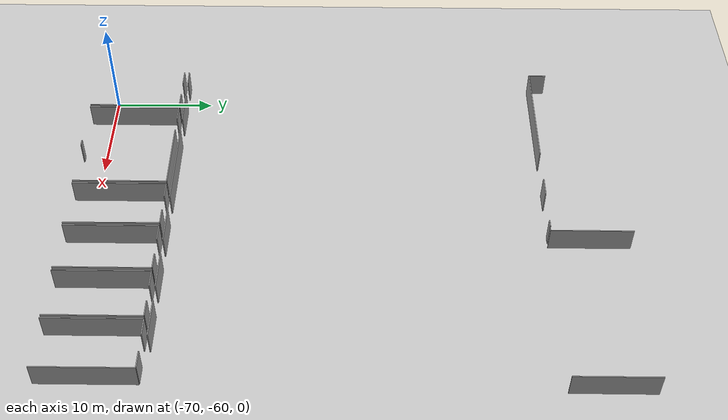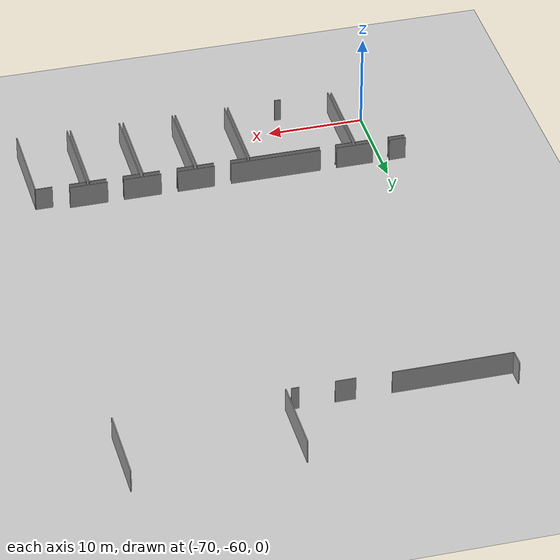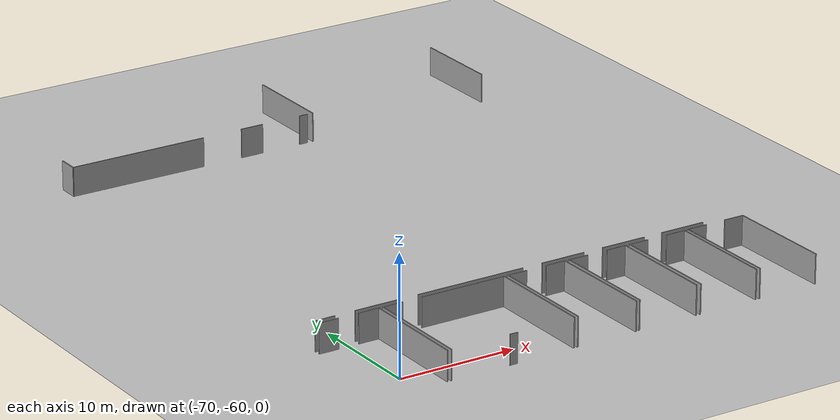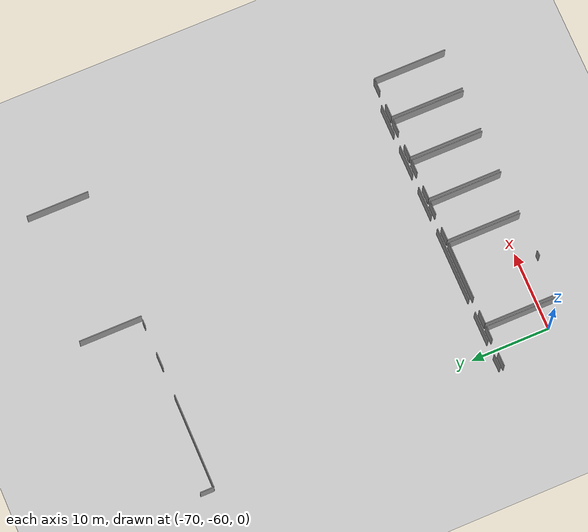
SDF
<sdf version="1.6">
 <world name="default">
  <model name="ground_plane">
   <static>1</static>
   <link name="link">
    <collision name="collision">
     <geometry><plane><normal>0 0 1</normal><size>100 100</size></plane></geometry>
     <surface><friction><ode><mu>100</mu><mu2>50</mu2></ode></friction></surface>
    </collision>
    <visual name="visual">
     <cast_shadows>0</cast_shadows>
     <geometry><plane><normal>0 0 1</normal><size>100 100</size></plane></geometry>
     <material>
      <script><uri>file://media/materials/scripts/gazebo.material</uri><name>Gazebo/Grey</name></script>
     </material>
    </visual>
   </link>
  </model>
  <model name="0510045905_A_40_1_103">
   <static>1</static>
   <link name="Wall_0">
    <collision name="Wall_0_Collision">
     <geometry><box><size>0.769020894272 0.1 2.5</size></box></geometry>
     <pose>0.384510447136 0 1.25 0 0 0</pose>
    </collision>
    <visual name="Wall_0_Visual">
     <pose>0.384510447136 0 1.25 0 0 0</pose>
     <geometry><box><size>0.769020894272 0.1 2.5</size></box></geometry>
     <material>
      <script><uri>file://media/materials/scripts/gazebo.material</uri><name>Gazebo/Grey</name></script>
      <ambient>1 1 1 1</ambient>
     </material>
    </visual>
    <pose>33.1874393254 -78.0304943434 0 0 0 3.14159265359</pose>
   </link>
   <link name="Wall_1">
    <collision name="Wall_1_Collision">
     <geometry><box><size>2.03168721408 0.1 2.5</size></box></geometry>
     <pose>1.01584360704 0 1.25 0 0 0</pose>
    </collision>
    <visual name="Wall_1_Visual">
     <pose>1.01584360704 0 1.25 0 0 0</pose>
     <geometry><box><size>2.03168721408 0.1 2.5</size></box></geometry>
     <material>
      <script><uri>file://media/materials/scripts/gazebo.material</uri><name>Gazebo/Grey</name></script>
      <ambient>1 1 1 1</ambient>
     </material>
    </visual>
    <pose>28.8966580585 -78.0304943434 0 0 0 3.14159265359</pose>
   </link>
   <link name="Wall_2">
    <collision name="Wall_2_Collision">
     <geometry><box><size>12.0568770899 0.1 2.5</size></box></geometry>
     <pose>6.02843854495 0 1.25 0 0 0</pose>
    </collision>
    <visual name="Wall_2_Visual">
     <pose>6.02843854495 0 1.25 0 0 0</pose>
     <geometry><box><size>12.0568770899 0.1 2.5</size></box></geometry>
     <material>
      <script><uri>file://media/materials/scripts/gazebo.material</uri><name>Gazebo/Grey</name></script>
      <ambient>1 1 1 1</ambient>
     </material>
    </visual>
    <pose>23.3066629442 -78.0304943434 0 0 0 3.14159265359</pose>
   </link>
   <link name="Wall_3">
    <collision name="Wall_3_Collision">
     <geometry><box><size>1.73905319061 0.1 2.5</size></box></geometry>
     <pose>0.869526595306 0 1.25 0 0 0</pose>
    </collision>
    <visual name="Wall_3_Visual">
     <pose>0.869526595306 0 1.25 0 0 0</pose>
     <geometry><box><size>1.73905319061 0.1 2.5</size></box></geometry>
     <material>
      <script><uri>file://media/materials/scripts/gazebo.material</uri><name>Gazebo/Grey</name></script>
      <ambient>1 1 1 1</ambient>
     </material>
    </visual>
    <pose>11.2497858543 -78.0304943434 0 0 0 1.57079632679</pose>
   </link>
   <link name="Wall_110">
    <collision name="Wall_110_Collision">
     <geometry><box><size>7.89781920395 0.1 2.5</size></box></geometry>
     <pose>3.94890960197 0 1.25 0 0 0</pose>
    </collision>
    <visual name="Wall_110_Visual">
     <pose>3.94890960197 0 1.25 0 0 0</pose>
     <geometry><box><size>7.89781920395 0.1 2.5</size></box></geometry>
     <material>
      <script><uri>file://media/materials/scripts/gazebo.material</uri><name>Gazebo/Grey</name></script>
      <ambient>1 1 1 1</ambient>
     </material>
    </visual>
    <pose>50.412492148 -78.0157738114 0 0 0 1.57079632679</pose>
   </link>
   <link name="Wall_116">
    <collision name="Wall_116_Collision">
     <geometry><box><size>7.96710722512 0.1 2.5</size></box></geometry>
     <pose>3.98355361256 0 1.25 0 0 0</pose>
    </collision>
    <visual name="Wall_116_Visual">
     <pose>3.98355361256 0 1.25 0 0 0</pose>
     <geometry><box><size>7.96710722512 0.1 2.5</size></box></geometry>
     <material>
      <script><uri>file://media/materials/scripts/gazebo.material</uri><name>Gazebo/Grey</name></script>
      <ambient>1 1 1 1</ambient>
     </material>
    </visual>
    <pose>33.6947900738 -78.078970578 0 0 0 1.57079632679</pose>
   </link>
   <link name="Wall_415">
    <collision name="Wall_415_Collision">
     <geometry><box><size>3.92175275851 0.1 2.5</size></box></geometry>
     <pose>1.96087637926 0 1.25 0 0 0</pose>
    </collision>
    <visual name="Wall_415_Visual">
     <pose>1.96087637926 0 1.25 0 0 0</pose>
     <geometry><box><size>3.92175275851 0.1 2.5</size></box></geometry>
     <material>
      <script><uri>file://media/materials/scripts/gazebo.material</uri><name>Gazebo/Grey</name></script>
      <ambient>1 1 1 1</ambient>
     </material>
    </visual>
    <pose>46.5894684746 -114.787408869 0 0 0 3.14159265359</pose>
   </link>
   <link name="Wall_416">
    <collision name="Wall_416_Collision">
     <geometry><box><size>3.91490009708 0.1 2.5</size></box></geometry>
     <pose>1.95745004854 0 1.25 0 0 0</pose>
    </collision>
    <visual name="Wall_416_Visual">
     <pose>1.95745004854 0 1.25 0 0 0</pose>
     <geometry><box><size>3.91490009708 0.1 2.5</size></box></geometry>
     <material>
      <script><uri>file://media/materials/scripts/gazebo.material</uri><name>Gazebo/Grey</name></script>
      <ambient>1 1 1 1</ambient>
     </material>
    </visual>
    <pose>41.0114020672 -114.787408869 0 0 0 3.14159265359</pose>
   </link>
   <link name="Wall_417">
    <collision name="Wall_417_Collision">
     <geometry><box><size>3.87175371027 0.1 2.5</size></box></geometry>
     <pose>1.93587685514 0 1.25 0 0 0</pose>
    </collision>
    <visual name="Wall_417_Visual">
     <pose>1.93587685514 0 1.25 0 0 0</pose>
     <geometry><box><size>3.87175371027 0.1 2.5</size></box></geometry>
     <material>
      <script><uri>file://media/materials/scripts/gazebo.material</uri><name>Gazebo/Grey</name></script>
      <ambient>1 1 1 1</ambient>
     </material>
    </visual>
    <pose>35.3752149388 -114.787408869 0 0 0 3.14159265359</pose>
   </link>
   <link name="Wall_418">
    <collision name="Wall_418_Collision">
     <geometry><box><size>9.44677449033 0.1 2.5</size></box></geometry>
     <pose>4.72338724517 0 1.25 0 0 0</pose>
    </collision>
    <visual name="Wall_418_Visual">
     <pose>4.72338724517 0 1.25 0 0 0</pose>
     <geometry><box><size>9.44677449033 0.1 2.5</size></box></geometry>
     <material>
      <script><uri>file://media/materials/scripts/gazebo.material</uri><name>Gazebo/Grey</name></script>
      <ambient>1 1 1 1</ambient>
     </material>
    </visual>
    <pose>29.7628852243 -114.787408869 0 0 0 3.14159265359</pose>
   </link>
   <link name="Wall_419">
    <collision name="Wall_419_Collision">
     <geometry><box><size>3.86490104884 0.1 2.5</size></box></geometry>
     <pose>1.93245052442 0 1.25 0 0 0</pose>
    </collision>
    <visual name="Wall_419_Visual">
     <pose>1.93245052442 0 1.25 0 0 0</pose>
     <geometry><box><size>3.86490104884 0.1 2.5</size></box></geometry>
     <material>
      <script><uri>file://media/materials/scripts/gazebo.material</uri><name>Gazebo/Grey</name></script>
      <ambient>1 1 1 1</ambient>
     </material>
    </visual>
    <pose>18.6037067822 -114.787408869 0 0 0 3.14159265359</pose>
   </link>
   <link name="Wall_420">
    <collision name="Wall_420_Collision">
     <geometry><box><size>1.74098676538 0.1 2.5</size></box></geometry>
     <pose>0.870493382692 0 1.25 0 0 0</pose>
    </collision>
    <visual name="Wall_420_Visual">
     <pose>0.870493382692 0 1.25 0 0 0</pose>
     <geometry><box><size>1.74098676538 0.1 2.5</size></box></geometry>
     <material>
      <script><uri>file://media/materials/scripts/gazebo.material</uri><name>Gazebo/Grey</name></script>
      <ambient>1 1 1 1</ambient>
     </material>
    </visual>
    <pose>12.9713266879 -114.787408869 0 0 0 -3.11986962034</pose>
   </link>
   <link name="Wall_452">
    <collision name="Wall_452_Collision">
     <geometry><box><size>1.72280984499 0.1 2.5</size></box></geometry>
     <pose>0.861404922495 0 1.25 0 0 0</pose>
    </collision>
    <visual name="Wall_452_Visual">
     <pose>0.861404922495 0 1.25 0 0 0</pose>
     <geometry><box><size>1.72280984499 0.1 2.5</size></box></geometry>
     <material>
      <script><uri>file://media/materials/scripts/gazebo.material</uri><name>Gazebo/Grey</name></script>
      <ambient>1 1 1 1</ambient>
     </material>
    </visual>
    <pose>11.2406489724 -115.321662659 0 0 0 0.0</pose>
   </link>
   <link name="Wall_453">
    <collision name="Wall_453_Collision">
     <geometry><box><size>1.78575280927 0.1 2.5</size></box></geometry>
     <pose>0.892876404637 0 1.25 0 0 0</pose>
    </collision>
    <visual name="Wall_453_Visual">
     <pose>0.892876404637 0 1.25 0 0 0</pose>
     <geometry><box><size>1.78575280927 0.1 2.5</size></box></geometry>
     <material>
      <script><uri>file://media/materials/scripts/gazebo.material</uri><name>Gazebo/Grey</name></script>
      <ambient>1 1 1 1</ambient>
     </material>
    </visual>
    <pose>14.7154559241 -115.321662659 0 0 0 0.0</pose>
   </link>
   <link name="Wall_454">
    <collision name="Wall_454_Collision">
     <geometry><box><size>9.34855412603 0.1 2.5</size></box></geometry>
     <pose>4.67427706301 0 1.25 0 0 0</pose>
    </collision>
    <visual name="Wall_454_Visual">
     <pose>4.67427706301 0 1.25 0 0 0</pose>
     <geometry><box><size>9.34855412603 0.1 2.5</size></box></geometry>
     <material>
      <script><uri>file://media/materials/scripts/gazebo.material</uri><name>Gazebo/Grey</name></script>
      <ambient>1 1 1 1</ambient>
     </material>
    </visual>
    <pose>16.5012087333 -115.321662659 0 0 0 -1.57128500569</pose>
   </link>
   <link name="Wall_455">
    <collision name="Wall_455_Collision">
     <geometry><box><size>0.671560820543 0.1 2.5</size></box></geometry>
     <pose>0.335780410271 0 1.25 0 0 0</pose>
    </collision>
    <visual name="Wall_455_Visual">
     <pose>0.335780410271 0 1.25 0 0 0</pose>
     <geometry><box><size>0.671560820543 0.1 2.5</size></box></geometry>
     <material>
      <script><uri>file://media/materials/scripts/gazebo.material</uri><name>Gazebo/Grey</name></script>
      <ambient>1 1 1 1</ambient>
     </material>
    </visual>
    <pose>22.6071838734 -124.679860155 0 0 0 3.14159265359</pose>
   </link>
   <link name="Wall_456">
    <collision name="Wall_456_Collision">
     <geometry><box><size>9.34119274379 0.1 2.5</size></box></geometry>
     <pose>4.6705963719 0 1.25 0 0 0</pose>
    </collision>
    <visual name="Wall_456_Visual">
     <pose>4.6705963719 0 1.25 0 0 0</pose>
     <geometry><box><size>9.34119274379 0.1 2.5</size></box></geometry>
     <material>
      <script><uri>file://media/materials/scripts/gazebo.material</uri><name>Gazebo/Grey</name></script>
      <ambient>1 1 1 1</ambient>
     </material>
    </visual>
    <pose>16.8306440867 -124.679860155 0 0 0 1.57079632679</pose>
   </link>
   <link name="Wall_457">
    <collision name="Wall_457_Collision">
     <geometry><box><size>1.75859596581 0.1 2.5</size></box></geometry>
     <pose>0.879297982906 0 1.25 0 0 0</pose>
    </collision>
    <visual name="Wall_457_Visual">
     <pose>0.879297982906 0 1.25 0 0 0</pose>
     <geometry><box><size>1.75859596581 0.1 2.5</size></box></geometry>
     <material>
      <script><uri>file://media/materials/scripts/gazebo.material</uri><name>Gazebo/Grey</name></script>
      <ambient>1 1 1 1</ambient>
     </material>
    </visual>
    <pose>16.8306440867 -115.338667411 0 0 0 0.0</pose>
   </link>
   <link name="Wall_458">
    <collision name="Wall_458_Collision">
     <geometry><box><size>7.40772701027 0.1 2.5</size></box></geometry>
     <pose>3.70386350514 0 1.25 0 0 0</pose>
    </collision>
    <visual name="Wall_458_Visual">
     <pose>3.70386350514 0 1.25 0 0 0</pose>
     <geometry><box><size>7.40772701027 0.1 2.5</size></box></geometry>
     <material>
      <script><uri>file://media/materials/scripts/gazebo.material</uri><name>Gazebo/Grey</name></script>
      <ambient>1 1 1 1</ambient>
     </material>
    </visual>
    <pose>20.2658578834 -115.338667411 0 0 0 0.0</pose>
   </link>
   <link name="Wall_459">
    <collision name="Wall_459_Collision">
     <geometry><box><size>9.34119274379 0.1 2.5</size></box></geometry>
     <pose>4.6705963719 0 1.25 0 0 0</pose>
    </collision>
    <visual name="Wall_459_Visual">
     <pose>4.6705963719 0 1.25 0 0 0</pose>
     <geometry><box><size>9.34119274379 0.1 2.5</size></box></geometry>
     <material>
      <script><uri>file://media/materials/scripts/gazebo.material</uri><name>Gazebo/Grey</name></script>
      <ambient>1 1 1 1</ambient>
     </material>
    </visual>
    <pose>27.6735848937 -115.338667411 0 0 0 -1.57079632679</pose>
   </link>
   <link name="Wall_460">
    <collision name="Wall_460_Collision">
     <geometry><box><size>9.34880681205 0.1 2.5</size></box></geometry>
     <pose>4.67440340603 0 1.25 0 0 0</pose>
    </collision>
    <visual name="Wall_460_Visual">
     <pose>4.67440340603 0 1.25 0 0 0</pose>
     <geometry><box><size>9.34880681205 0.1 2.5</size></box></geometry>
     <material>
      <script><uri>file://media/materials/scripts/gazebo.material</uri><name>Gazebo/Grey</name></script>
      <ambient>1 1 1 1</ambient>
     </material>
    </visual>
    <pose>28.0068272812 -124.681382969 0 0 0 1.57079632679</pose>
   </link>
   <link name="Wall_461">
    <collision name="Wall_461_Collision">
     <geometry><box><size>1.72255604271 0.1 2.5</size></box></geometry>
     <pose>0.861278021357 0 1.25 0 0 0</pose>
    </collision>
    <visual name="Wall_461_Visual">
     <pose>0.861278021357 0 1.25 0 0 0</pose>
     <geometry><box><size>1.72255604271 0.1 2.5</size></box></geometry>
     <material>
      <script><uri>file://media/materials/scripts/gazebo.material</uri><name>Gazebo/Grey</name></script>
      <ambient>1 1 1 1</ambient>
     </material>
    </visual>
    <pose>28.0068272812 -115.332576157 0 0 0 0.0</pose>
   </link>
   <link name="Wall_462">
    <collision name="Wall_462_Collision">
     <geometry><box><size>1.72864729732 0.1 2.5</size></box></geometry>
     <pose>0.864323648662 0 1.25 0 0 0</pose>
    </collision>
    <visual name="Wall_462_Visual">
     <pose>0.864323648662 0 1.25 0 0 0</pose>
     <geometry><box><size>1.72864729732 0.1 2.5</size></box></geometry>
     <material>
      <script><uri>file://media/materials/scripts/gazebo.material</uri><name>Gazebo/Grey</name></script>
      <ambient>1 1 1 1</ambient>
     </material>
    </visual>
    <pose>31.4961009625 -115.332576157 0 0 0 0.0</pose>
   </link>
   <link name="Wall_463">
    <collision name="Wall_463_Collision">
     <geometry><box><size>9.3489986897 0.1 2.5</size></box></geometry>
     <pose>4.67449934485 0 1.25 0 0 0</pose>
    </collision>
    <visual name="Wall_463_Visual">
     <pose>4.67449934485 0 1.25 0 0 0</pose>
     <geometry><box><size>9.3489986897 0.1 2.5</size></box></geometry>
     <material>
      <script><uri>file://media/materials/scripts/gazebo.material</uri><name>Gazebo/Grey</name></script>
      <ambient>1 1 1 1</ambient>
     </material>
    </visual>
    <pose>33.2247482599 -115.332576157 0 0 0 -1.56438946455</pose>
   </link>
   <link name="Wall_464">
    <collision name="Wall_464_Collision">
     <geometry><box><size>9.29195510238 0.1 2.5</size></box></geometry>
     <pose>4.64597755119 0 1.25 0 0 0</pose>
    </collision>
    <visual name="Wall_464_Visual">
     <pose>4.64597755119 0 1.25 0 0 0</pose>
     <geometry><box><size>9.29195510238 0.1 2.5</size></box></geometry>
     <material>
      <script><uri>file://media/materials/scripts/gazebo.material</uri><name>Gazebo/Grey</name></script>
      <ambient>1 1 1 1</ambient>
     </material>
    </visual>
    <pose>33.6128119389 -124.646865859 0 0 0 1.57079632679</pose>
   </link>
   <link name="Wall_465">
    <collision name="Wall_465_Collision">
     <geometry><box><size>1.72813969277 0.1 2.5</size></box></geometry>
     <pose>0.864069846386 0 1.25 0 0 0</pose>
    </collision>
    <visual name="Wall_465_Visual">
     <pose>0.864069846386 0 1.25 0 0 0</pose>
     <geometry><box><size>1.72813969277 0.1 2.5</size></box></geometry>
     <material>
      <script><uri>file://media/materials/scripts/gazebo.material</uri><name>Gazebo/Grey</name></script>
      <ambient>1 1 1 1</ambient>
     </material>
    </visual>
    <pose>33.6128119389 -115.354910757 0 0 0 0.0</pose>
   </link>
   <link name="Wall_466">
    <collision name="Wall_466_Collision">
     <geometry><box><size>1.73372334283 0.1 2.5</size></box></geometry>
     <pose>0.866861671415 0 1.25 0 0 0</pose>
    </collision>
    <visual name="Wall_466_Visual">
     <pose>0.866861671415 0 1.25 0 0 0</pose>
     <geometry><box><size>1.73372334283 0.1 2.5</size></box></geometry>
     <material>
      <script><uri>file://media/materials/scripts/gazebo.material</uri><name>Gazebo/Grey</name></script>
      <ambient>1 1 1 1</ambient>
     </material>
    </visual>
    <pose>37.1140143271 -115.354910757 0 0 0 0.0</pose>
   </link>
   <link name="Wall_467">
    <collision name="Wall_467_Collision">
     <geometry><box><size>9.29195726875 0.1 2.5</size></box></geometry>
     <pose>4.64597863438 0 1.25 0 0 0</pose>
    </collision>
    <visual name="Wall_467_Visual">
     <pose>4.64597863438 0 1.25 0 0 0</pose>
     <geometry><box><size>9.29195726875 0.1 2.5</size></box></geometry>
     <material>
      <script><uri>file://media/materials/scripts/gazebo.material</uri><name>Gazebo/Grey</name></script>
      <ambient>1 1 1 1</ambient>
     </material>
    </visual>
    <pose>38.84773767 -115.354910757 0 0 0 -1.57147918157</pose>
   </link>
   <link name="Wall_468">
    <collision name="Wall_468_Collision">
     <geometry><box><size>9.30033057746 0.1 2.5</size></box></geometry>
     <pose>4.65016528873 0 1.25 0 0 0</pose>
    </collision>
    <visual name="Wall_468_Visual">
     <pose>4.65016528873 0 1.25 0 0 0</pose>
     <geometry><box><size>9.30033057746 0.1 2.5</size></box></geometry>
     <material>
      <script><uri>file://media/materials/scripts/gazebo.material</uri><name>Gazebo/Grey</name></script>
      <ambient>1 1 1 1</ambient>
     </material>
    </visual>
    <pose>39.231232908 -124.654987532 0 0 0 1.57079632679</pose>
   </link>
   <link name="Wall_469">
    <collision name="Wall_469_Collision">
     <geometry><box><size>1.72306364727 0.1 2.5</size></box></geometry>
     <pose>0.861531823633 0 1.25 0 0 0</pose>
    </collision>
    <visual name="Wall_469_Visual">
     <pose>0.861531823633 0 1.25 0 0 0</pose>
     <geometry><box><size>1.72306364727 0.1 2.5</size></box></geometry>
     <material>
      <script><uri>file://media/materials/scripts/gazebo.material</uri><name>Gazebo/Grey</name></script>
      <ambient>1 1 1 1</ambient>
     </material>
    </visual>
    <pose>39.231232908 -115.354656954 0 0 0 0.0</pose>
   </link>
   <link name="Wall_470">
    <collision name="Wall_470_Collision">
     <geometry><box><size>1.73549995876 0.1 2.5</size></box></geometry>
     <pose>0.867749979379 0 1.25 0 0 0</pose>
    </collision>
    <visual name="Wall_470_Visual">
     <pose>0.867749979379 0 1.25 0 0 0</pose>
     <geometry><box><size>1.73549995876 0.1 2.5</size></box></geometry>
     <material>
      <script><uri>file://media/materials/scripts/gazebo.material</uri><name>Gazebo/Grey</name></script>
      <ambient>1 1 1 1</ambient>
     </material>
    </visual>
    <pose>42.7012176164 -115.354656954 0 0 0 0.0</pose>
   </link>
   <link name="Wall_471">
    <collision name="Wall_471_Collision">
     <geometry><box><size>9.3003505802 0.1 2.5</size></box></geometry>
     <pose>4.6501752901 0 1.25 0 0 0</pose>
    </collision>
    <visual name="Wall_471_Visual">
     <pose>4.6501752901 0 1.25 0 0 0</pose>
     <geometry><box><size>9.3003505802 0.1 2.5</size></box></geometry>
     <material>
      <script><uri>file://media/materials/scripts/gazebo.material</uri><name>Gazebo/Grey</name></script>
      <ambient>1 1 1 1</ambient>
     </material>
    </visual>
    <pose>44.4367175752 -115.354656954 0 0 0 -1.57287033321</pose>
   </link>
   <link name="Wall_472">
    <collision name="Wall_472_Collision">
     <geometry><box><size>9.3452535802 0.1 2.5</size></box></geometry>
     <pose>4.6726267901 0 1.25 0 0 0</pose>
    </collision>
    <visual name="Wall_472_Visual">
     <pose>4.6726267901 0 1.25 0 0 0</pose>
     <geometry><box><size>9.3452535802 0.1 2.5</size></box></geometry>
     <material>
      <script><uri>file://media/materials/scripts/gazebo.material</uri><name>Gazebo/Grey</name></script>
      <ambient>1 1 1 1</ambient>
     </material>
    </visual>
    <pose>44.7674219399 -124.669454262 0 0 0 1.57079632679</pose>
   </link>
   <link name="Wall_473">
    <collision name="Wall_473_Collision">
     <geometry><box><size>1.75605794306 0.1 2.5</size></box></geometry>
     <pose>0.87802897153 0 1.25 0 0 0</pose>
    </collision>
    <visual name="Wall_473_Visual">
     <pose>0.87802897153 0 1.25 0 0 0</pose>
     <geometry><box><size>1.75605794306 0.1 2.5</size></box></geometry>
     <material>
      <script><uri>file://media/materials/scripts/gazebo.material</uri><name>Gazebo/Grey</name></script>
      <ambient>1 1 1 1</ambient>
     </material>
    </visual>
    <pose>44.7674219399 -115.324200681 0 0 0 0.0</pose>
   </link>
   <link name="Wall_474">
    <collision name="Wall_474_Collision">
     <geometry><box><size>1.75580414078 0.1 2.5</size></box></geometry>
     <pose>0.877902070392 0 1.25 0 0 0</pose>
    </collision>
    <visual name="Wall_474_Visual">
     <pose>0.877902070392 0 1.25 0 0 0</pose>
     <geometry><box><size>1.75580414078 0.1 2.5</size></box></geometry>
     <material>
      <script><uri>file://media/materials/scripts/gazebo.material</uri><name>Gazebo/Grey</name></script>
      <ambient>1 1 1 1</ambient>
     </material>
    </visual>
    <pose>48.2792840238 -115.324200681 0 0 0 0.0</pose>
   </link>
   <link name="Wall_475">
    <collision name="Wall_475_Collision">
     <geometry><box><size>9.34526477765 0.1 2.5</size></box></geometry>
     <pose>4.67263238883 0 1.25 0 0 0</pose>
    </collision>
    <visual name="Wall_475_Visual">
     <pose>4.67263238883 0 1.25 0 0 0</pose>
     <geometry><box><size>9.34526477765 0.1 2.5</size></box></geometry>
     <material>
      <script><uri>file://media/materials/scripts/gazebo.material</uri><name>Gazebo/Grey</name></script>
      <ambient>1 1 1 1</ambient>
     </material>
    </visual>
    <pose>50.0350881646 -115.324200681 0 0 0 -1.56924829837</pose>
   </link>
   <pose>-83.8 62.4001624335 0 0 0 0</pose>
  </model>
 </world>
</sdf>
